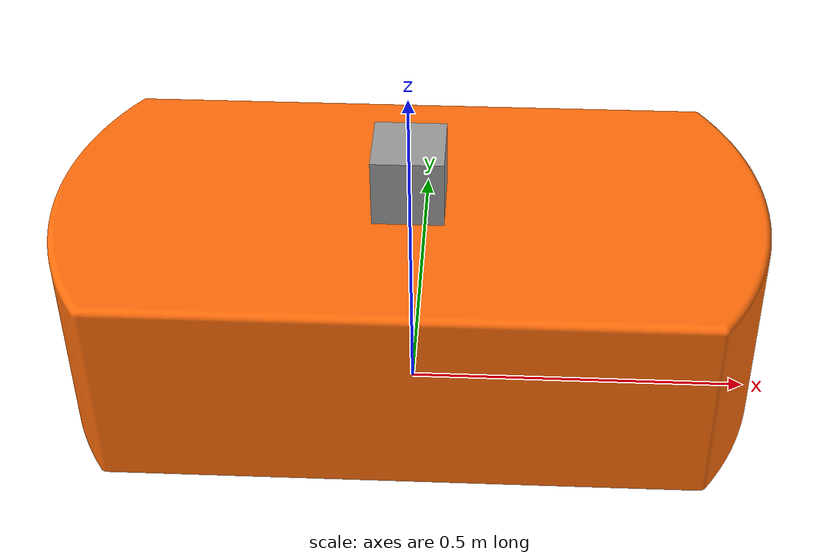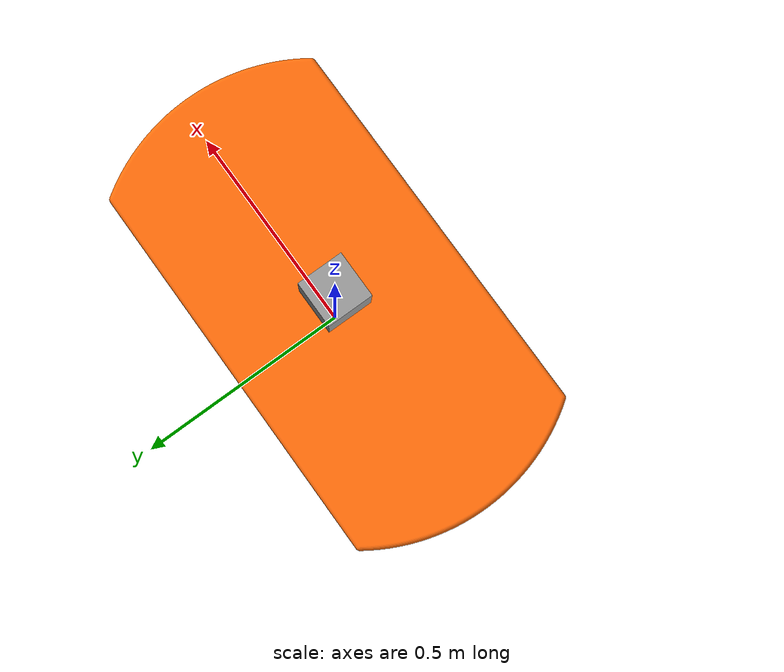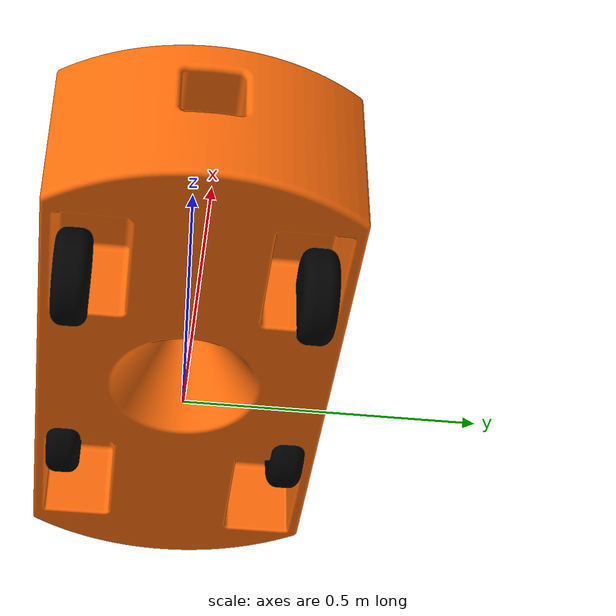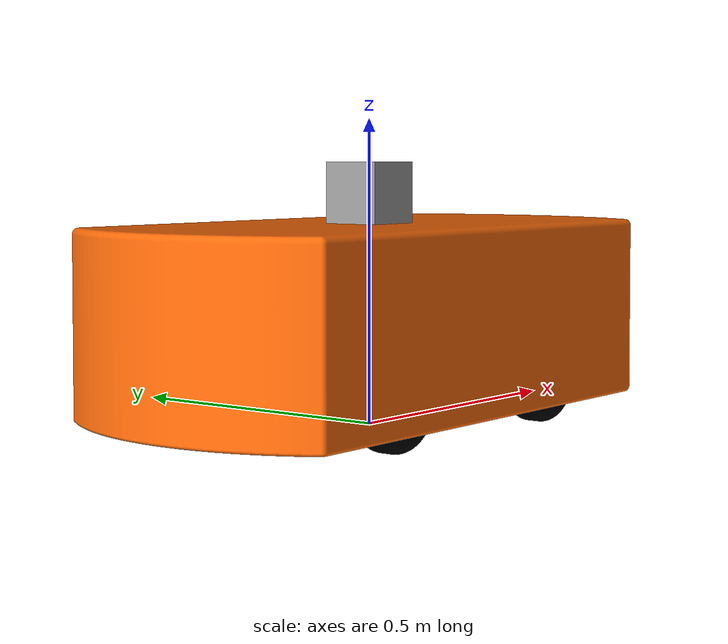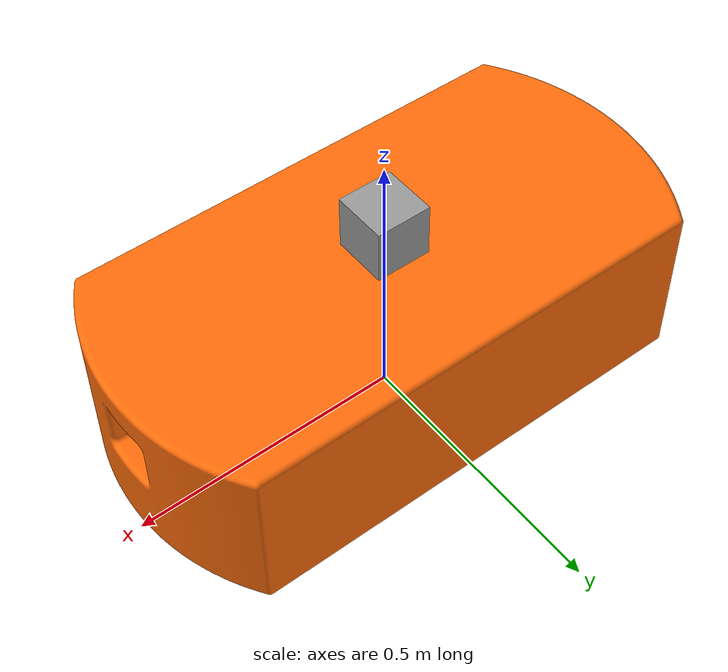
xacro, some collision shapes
<?xml version="1.0"?>
<!-- Revolute-Revolute Manipulator -->
<robot name="ngws" xmlns:xacro="http://www.ros.org/wiki/xacro">

  <!-- Constants for robot dimensions -->
  <xacro:property name="PI" value="3.1415926535897931"/>
  <xacro:property name="mass" value="30" /> <!-- arbitrary value for mass -->
  <xacro:property name="width" value="0.1" /> <!-- Square dimensions (widthxwidth) of beams -->
  <xacro:property name="height1" value="2" /> <!-- Link 1 -->
  <xacro:property name="height2" value="1" /> <!-- Link 2 -->
  <xacro:property name="height3" value="1" /> <!-- Link 3 -->
  <xacro:property name="camera_link" value="0.05" /> <!-- Size of square 'camera' box -->
  <xacro:property name="axel_offset" value="0.05" /> <!-- Space btw top of beam and the each joint -->

  <!-- Import all Gazebo-customization elements, including Gazebo colors -->
  <xacro:include filename="$(find ngws_description)/urdf/gazebo/addon_v0.0.gazebo" />
  <!-- Import Rviz colors -->
  <xacro:include filename="$(find ngws_description)/urdf/materials/materials.xacro" />

  <!-- Used for fixing robot to Gazebo 'base_link' -->
    <!-- Used for fixing robot to Gazebo 'base_link' -->
  <link name="base_footprint"/>

  <joint name="base_joint" type="fixed">
    <origin xyz="0.0 0.0 0.03" rpy="0 0 0"/>
    <parent link="base_footprint"/>
    <child link="base_link"/>
  </joint>

  <!-- Base Link -->
  <link name="base_link">
    <collision>
      <origin xyz="0 0 0.15" rpy="0 0 0"/>
      <geometry>
        <mesh filename="package://ngws_description/meshes/cheshen.stl" scale="0.001 0.001 0.001"/>
      </geometry>
    </collision>

    <visual>
      <origin xyz="0 0 0.15" rpy="0 0 0"/>
      <geometry>
        <mesh filename="package://ngws_description/meshes/cheshen.stl" scale="0.001 0.001 0.001"/>
      </geometry>
      <material name="orange"/>
    </visual>

    <inertial>
      <origin xyz="0 0 0" rpy="0 0 0"/>
      <mass value="${mass}"/>
      <inertia
    ixx="${mass / 12.0 * (width*width + height1*height1)}" ixy="0.0" ixz="0.0"
    iyy="${mass / 12.0 * (height1*height1 + width*width)}" iyz="0.0"
    izz="${mass / 12.0 * (width*width + width*width)}"/>
    </inertial>
  </link>

  <!-- Wheel FR -->
  <joint name="wheel_FR_joint" type="continuous">
    <axis xyz="0 0 -1" />
    <origin xyz="0.2 -0.2 0.05" rpy="${PI/2.0} 0 0"/>
    <parent link="base_link"/>
    <child link="wheel_FR_link"/>
    <dynamics damping="0.05"/>
  </joint>

  <link name="wheel_FR_link">
    <collision>
      <origin xyz="0 0 0" rpy="0 0 0"/>
      <geometry>
        <mesh filename="package://ngws_description/meshes/chelun.stl" scale="0.001 0.001 0.001"/>
      </geometry>
    </collision>

    <visual>
      <origin xyz="0 0 0" rpy="0 0 0"/>
      <geometry>
        <mesh filename="package://ngws_description/meshes/chelun.stl" scale="0.001 0.001 0.001"/>
      </geometry>
      <material name="black"/>
    </visual>

    <inertial>
      <mass value="0.5" />
      <origin xyz="0 0 0" rpy="0 0 0"/>
        <inertia
        ixx="0.005" ixy="0.0" ixz="0.0"
        iyy="0.005" iyz="0.0"
        izz="0.009"/>
    </inertial>
  </link>

  <!-- Wheel FL -->
  <joint name="wheel_FL_joint" type="continuous">
    <axis xyz="0 0 -1" />
    <origin xyz="0.2 0.2 0.05" rpy="${PI/2.0} 0 0"/>
    <parent link="base_link"/>
    <child link="wheel_FL_link"/>
    <dynamics damping="0.05"/>
  </joint>

  <link name="wheel_FL_link">
    <collision>
      <origin xyz="0 0 0" rpy="0 0 0"/>
      <geometry>
        <mesh filename="package://ngws_description/meshes/chelun.stl" scale="0.001 0.001 0.001"/>
      </geometry>
    </collision>

    <visual>
      <origin xyz="0 0 0" rpy="0 0 0"/>
      <geometry>
        <mesh filename="package://ngws_description/meshes/chelun.stl" scale="0.001 0.001 0.001"/>
      </geometry>
      <material name="black"/>
    </visual>

    <inertial>
      <mass value="0.5" />
      <origin xyz="0 0 0" rpy="0 0 0"/>
        <inertia
        ixx="0.005" ixy="0.0" ixz="0.0"
        iyy="0.005" iyz="0.0"
        izz="0.009"/>
    </inertial>
  </link>

<!-- Wheel BR -->
  <joint name="wheel_BR_joint" type="continuous">
    <axis xyz="0 0 -1" />
    <origin xyz="-0.2 -0.2 0.05" rpy="${PI/2.0} 0 0"/>
    <parent link="base_link"/>
    <child link="wheel_BR_link"/>
    <dynamics damping="0.05"/>
  </joint>

  <link name="wheel_BR_link">
    <collision>
      <origin xyz="0 0 0" rpy="0 0 0"/>
      <geometry>
        <mesh filename="package://ngws_description/meshes/chelun.stl" scale="0.001 0.001 0.001"/>
      </geometry>
    </collision>

    <visual>
      <origin xyz="0 0 0" rpy="0 0 0"/>
      <geometry>
        <mesh filename="package://ngws_description/meshes/chelun.stl" scale="0.001 0.001 0.001"/>
      </geometry>
      <material name="black"/>
    </visual>

    <inertial>
      <mass value="0.5" />
      <origin xyz="0 0 0" rpy="0 0 0"/>
        <inertia
        ixx="0.005" ixy="0.0" ixz="0.0"
        iyy="0.005" iyz="0.0"
        izz="0.009"/>
    </inertial>
  </link>

<!-- Wheel BL -->
  <joint name="wheel_BL_joint" type="continuous">
    <axis xyz="0 0 -1" />
    <origin xyz="-0.2 0.2 0.05" rpy="${PI/2.0} 0 0"/>
    <parent link="base_link"/>
    <child link="wheel_BL_link"/>
    <dynamics damping="0.05"/>
  </joint>

  <link name="wheel_BL_link">
    <collision>
      <origin xyz="0 0 0" rpy="0 0 0"/>
      <geometry>
        <mesh filename="package://ngws_description/meshes/chelun.stl" scale="0.001 0.001 0.001"/>
      </geometry>
    </collision>

    <visual>
      <origin xyz="0 0 0" rpy="0 0 0"/>
      <geometry>
        <mesh filename="package://ngws_description/meshes/chelun.stl" scale="0.001 0.001 0.001"/>
      </geometry>
      <material name="black"/>
    </visual>

    <inertial>
      <mass value="0.5" />
      <origin xyz="0 0 0" rpy="0 0 0"/>
        <inertia
        ixx="0.005" ixy="0.0" ixz="0.0"
        iyy="0.005" iyz="0.0"
        izz="0.009"/>
    </inertial>
  </link>

  <!-- Laser -->

  <joint name="laser_joint" type="fixed">
    <axis xyz="0 1 0" />
    <origin xyz="0.0 0 0.35" rpy="0 0 0"/>
    <parent link="base_link"/>
    <child link="laser_link"/>
  </joint>

  <link name="laser_link">
    <collision>
      <origin xyz="0 0 0" rpy="0 0 0"/>
      <geometry>
  <box size="0.1 0.1 0.1"/>
      </geometry>
    </collision>

    <visual>
      <origin xyz="0 0 0" rpy="0 0 0"/>
      <geometry>
        <mesh filename="package://ngws_description/meshes/hokuyo.dae"/>
      </geometry>
    </visual>

    <inertial>
      <mass value="1e-5" />
      <origin xyz="0 0 0" rpy="0 0 0"/>
      <inertia ixx="1e-6" ixy="0" ixz="0" iyy="1e-6" iyz="0" izz="1e-6" />
    </inertial>
  </link>

  <joint name="camera_joint" type="fixed">
    <axis xyz="0 1 0" />
    <origin xyz="0 0 0.2" rpy="0 ${PI/2.0} 0"/>
    <parent link="base_link"/>
    <child link="camera_link"/>
  </joint>

  <!-- Camera -->
  <link name="camera_link">
    <collision>
      <origin xyz="0 0 0" rpy="0 0 0"/>
      <geometry>
  <box size="0.06 0.06 0.06 "/>
      </geometry>
    </collision>

    <visual>
      <origin xyz="0 0 0" rpy="0 0 0"/>
      <geometry>
  <box size="0.06 0.06 0.06"/>
      </geometry>
      <material name="red"/>
    </visual>

    <inertial>
      <mass value="1e-5" />
      <origin xyz="0 0 0" rpy="0 0 0"/>
      <inertia ixx="1e-6" ixy="0" ixz="0" iyy="1e-6" iyz="0" izz="1e-6" />
    </inertial>
  </link>

  <transmission name="tran1">
    <type>transmission_interface/SimpleTransmission</type>
    <joint name="wheel_FR_joint">
      <hardwareInterface>VelocityJointInterface</hardwareInterface>
    </joint>
    <actuator name="motor1">
      <hardwareInterface>VelocityJointInterface</hardwareInterface>
      <mechanicalReduction>1</mechanicalReduction>
    </actuator>
  </transmission>

  <transmission name="tran2">
    <type>transmission_interface/SimpleTransmission</type>
    <joint name="wheel_FL_joint">
      <hardwareInterface>VelocityJointInterface</hardwareInterface>
    </joint>
    <actuator name="motor2">
      <hardwareInterface>VelocityJointInterface</hardwareInterface>
      <mechanicalReduction>1</mechanicalReduction>
    </actuator>
  </transmission>

  <transmission name="tran3">
    <type>transmission_interface/SimpleTransmission</type>
    <joint name="wheel_BR_joint">
      <hardwareInterface>VelocityJointInterface</hardwareInterface>
    </joint>
    <actuator name="motor3">
      <hardwareInterface>VelocityJointInterface</hardwareInterface>
      <mechanicalReduction>1</mechanicalReduction>
    </actuator>
  </transmission>

  <transmission name="tran4">
    <type>transmission_interface/SimpleTransmission</type>
    <joint name="wheel_BL_joint">
      <hardwareInterface>VelocityJointInterface</hardwareInterface>
    </joint>
    <actuator name="motor4">
      <hardwareInterface>VelocityJointInterface</hardwareInterface>
      <mechanicalReduction>1</mechanicalReduction>
    </actuator>
  </transmission>

</robot>

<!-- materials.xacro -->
<robot>

  <material name="black">
    <color rgba="0.0 0.0 0.0 1.0"/>
  </material>

  <material name="blue">
    <color rgba="0.0 0.0 0.8 1.0"/>
  </material>

  <material name="green">
    <color rgba="0.0 0.8 0.0 1.0"/>
  </material>

  <material name="grey">
    <color rgba="0.2 0.2 0.2 1.0"/>
  </material>

  <material name="orange">
    <color rgba="${255/255} ${108/255} ${10/255} 1.0"/>
  </material>

  <material name="brown">
    <color rgba="${222/255} ${207/255} ${195/255} 1.0"/>
  </material>

  <material name="red">
    <color rgba="0.8 0.0 0.0 1.0"/>
  </material>

  <material name="white">
    <color rgba="1.0 1.0 1.0 1.0"/>
  </material>

  <material name="alpha_red">
    <color rgba="0.8 0.0 0.0 0.2"/>
  </material>

</robot>
